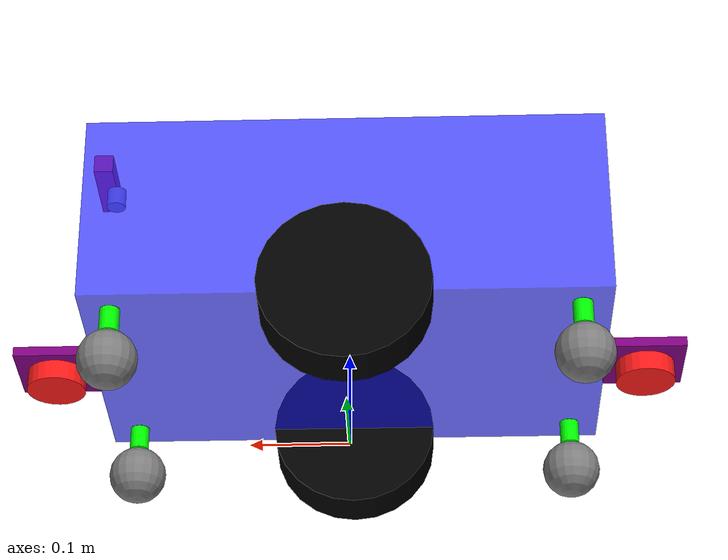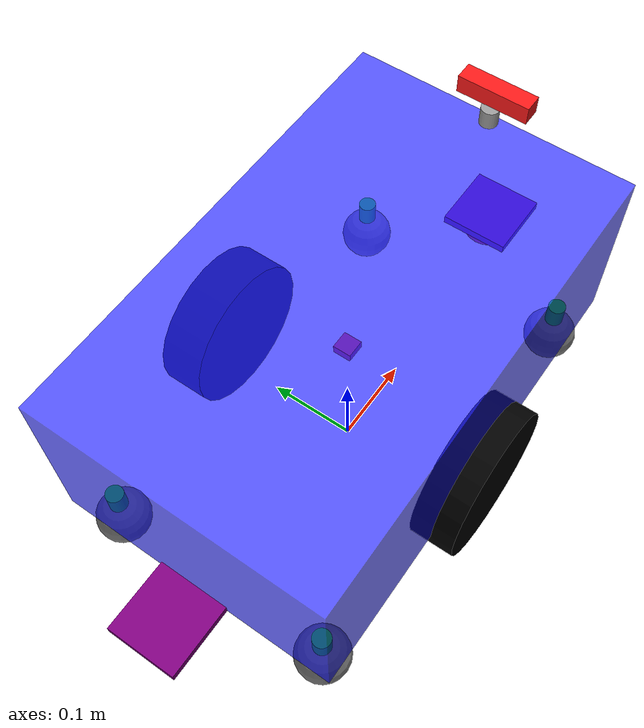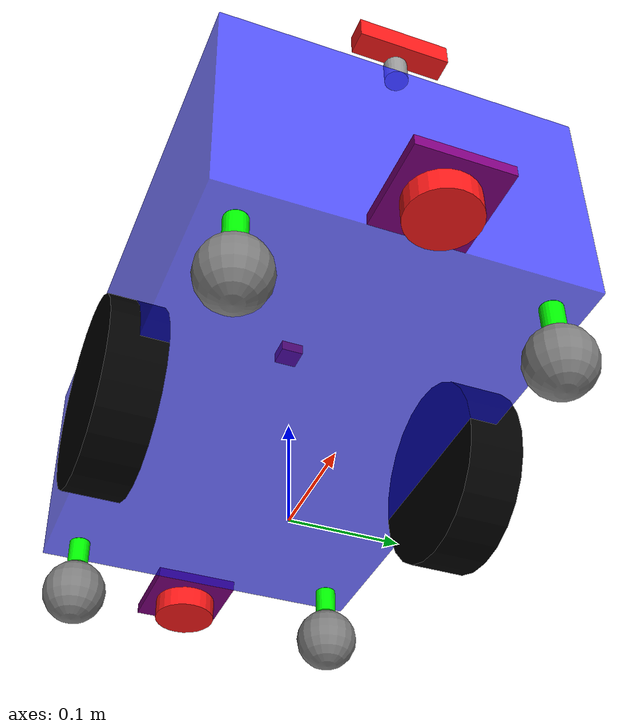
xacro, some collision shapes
<?xml version="1.0"?>
<robot xmlns:xacro="http://www.ros.org/wiki/xacro" name="pec_robot">
    <!-- 索引 -->
     <!-- base_link -->
    <xacro:include filename="$(find sim_pec)/urdf/base/base.xacro" />
    <xacro:include filename="$(find sim_pec)/urdf/base/laser_base.xacro" />
    <!-- wheel  -->
    <xacro:include filename="$(find sim_pec)/urdf/wheel/wheel.xacro" />

    <!-- caster  -->
    <xacro:include filename="$(find sim_pec)/urdf/wheel/caster.xacro" />

    <!-- laser -->
    <xacro:include filename="$(find sim_pec)/urdf/sensor/laser.xacro" />

    <!-- camera -->
    <xacro:include filename="$(find sim_pec)/urdf/sensor/camera.xacro" />

    <!-- imu -->
    <xacro:include filename="$(find sim_pec)/urdf/sensor/imu.xacro" />

    <!-- gazebo control插件 -->
    <xacro:include filename="$(find sim_pec)/urdf/gazebo_setting/gazebo_control_plugin.xacro" />
    <!-- gazebo sensor插件 -->
    <xacro:include filename="$(find sim_pec)/urdf/gazebo_setting/gazebo_sensor_plugin.xacro" />
    <!-- gazebo link设置 -->
    <xacro:include filename="$(find sim_pec)/urdf/gazebo_setting/gazebo_link_setting.xacro" />

    <!-- 应用 -->
    <!-- 基座尺寸 -->
    <xacro:base_xacro length="0.52" width="0.32" height="0.2" />
    <xacro:laser_base_xacro laser_base_name="front" xyz="0.3 0.0 -0.095" />
    <xacro:laser_base_xacro laser_base_name="back" xyz="-0.3 0.0 -0.095" />

    <!-- 轮子 -->
     <!-- 轮间距0.32，轮半径0.085 -->
    <xacro:wheel_xacro wheel_name="left" xyz="0.0 0.16 -0.1" />
    <xacro:wheel_xacro wheel_name="right" xyz="0.0 -0.16 -0.1" />

    <!-- caster x和y轴各收0.3 -->
     <!-- 万向轮要比主动轮高一点点,0.3cm即可 -->
    <xacro:caster_xacro caster_name="LF" xyz="0.23 0.13 -0.1122" />
    <xacro:caster_xacro caster_name="RF" xyz="0.23 -0.13 -0.1122" />
    <xacro:caster_xacro caster_name="LB" xyz="-0.23 0.13 -0.1122" />
    <xacro:caster_xacro caster_name="RB" xyz="-0.23 -0.13 -0.1122" />

    <!-- laser -->
    <xacro:laser_xacro laser_name="front" xyz="0 0 -0.015" rpy="0 0 0" />
    <xacro:laser_xacro laser_name="back" xyz="0 0 -0.015" rpy="0 0 3.1415926" />

    <!-- camera -->
     <!-- 30°对应0.5235987 -->
    <xacro:camera_xacro xyz="0.25 0 0.11" rpy="0 0 0" cylinder_length="0.02"/>

    <!-- imu -->
    <xacro:imu_xacro xyz="0.0 0.0 0.0" />

    <!-- 应用gazebo控制插件 -->
    <xacro:gazebo_control_plugin />
    <!-- 应用gazebo传感器插件 -->
    <xacro:gazebo_sensor_plugin />
    <!-- 应用gazebo link设置 -->
    <xacro:gazebo_link_setting />

</robot>

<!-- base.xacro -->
<robot xmlns:xacro="http://www.ros.org/wiki/xacro">
    <xacro:include filename="$(find sim_pec)/urdf/common_inertia.xacro" />
        <xacro:macro name="base_xacro" params="length width height">
            <!-- 虚拟部件:base_footprint -->
            <link name="base_footprint"/>

            <!-- base_link基座 -->
             <link name="base_link">
                <!-- 外观 -->
                <visual>
                    <origin xyz="0 0 0.0" rpy="0 0 0" />
                    <geometry>
                        <box size="${length} ${width} ${height}" />
                    </geometry>
                    <material name="blue">
                        <color rgba="0.1 0.1 1.0 0.7" />
                    </material>
                </visual>
                <!-- 碰撞 -->
                <!-- collision box高度减小并上移，避免与轮子重叠 -->
                <collision>
                    <origin xyz="0 0 0.05" rpy="0 0 0" />
                    <geometry>
                        <box size="${length} ${width} ${height-0.1}" />
                    </geometry>
                </collision>

                <!-- 惯性与质量 -->
                <xacro:box_inertia m="3.0" w="${length}" h="${width}" d="${height}" />
             </link>

            <!-- 连接base_link与base_footprint -->
            <joint name="base_joint" type="fixed">
                <parent link="base_footprint" />
                <child link="base_link" />
                <origin xyz="0.0 0.0 ${height/2.0+0.085}" rpy="0 0 0" />
            </joint>

        </xacro:macro>
</robot>

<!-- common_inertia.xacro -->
<robot xmlns:xacro="http://ros.org/wiki/xacro">
    <!-- 请注意，w h d分别对应xyz轴的长度 -->
    <xacro:macro name="box_inertia" params="m w h d">
        <inertial>
            <mass value="${m}" />
            <inertia ixx="${(m/12) * (h*h + d*d)}" ixy="0.0" ixz="0.0" iyy="${(m/12) * (w*w + d*d)}" iyz="0.0" izz="${(m/12) * (w*w + h*h)}" />
        </inertial>
    </xacro:macro>

    <xacro:macro name="cylinder_inertia" params="m r h rpy">
        <inertial>
            <origin xyz="0 0 0" rpy="${rpy}"/>
            <mass value="${m}" />
            <inertia ixx="${(m/12) * (3*r*r + h*h)}" ixy="0" ixz="0" iyy="${(m/12) * (3*r*r + h*h)}" iyz="0" izz="${(m/2) * (r*r)}" />
        </inertial>
    </xacro:macro>

    <xacro:macro name="sphere_inertia" params="m r">
        <inertial>
            <mass value="${m}" />
            <inertia ixx="${(2/5) * m * (r*r)}" ixy="0.0" ixz="0.0" iyy="${(2/5) * m * (r*r)}" iyz="0.0" izz="${(2/5) * m * (r*r)}" />
        </inertial>
    </xacro:macro>

</robot>

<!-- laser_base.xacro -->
<robot xmlns:xacro="http://www.ros.org/wiki/xacro">
    <xacro:include filename="$(find sim_pec)/urdf/common_inertia.xacro" />
        <xacro:macro name="laser_base_xacro" params="laser_base_name xyz">
            <link name="${laser_base_name}_laser_base_link">
                <visual>
                    <origin xyz="0.0 0.0 0.0" rpy="0.0 0.0 0.0"/>
                    <geometry>
                        <box size="0.08 0.08 0.01"/>
                    </geometry>
                    <material name="purple">
                        <color rgba="0.5 0.0 0.5 1.0" />
                    </material>
                </visual>
                <collision>
                    <origin xyz="0.0 0.0 0.0" rpy="0.0 0.0 0.0"/>
                    <geometry>
                        <box size="0.08 0.08 0.01"/>
                    </geometry>
                    <material name="purple">
                        <color rgba="0.5 0.0 0.5 1.0" />
                    </material>
                </collision>
                <!-- 惯性与质量 -->
                <xacro:box_inertia m="0.3" w="0.08" h="0.08" d="0.01" />
            </link>

            <!-- 连接base_link与laser_base_link -->
            <joint name="${laser_base_name}_laser_base_joint" type="fixed">
                <parent link="base_link" />
                <child link="${laser_base_name}_laser_base_link" />
                <origin xyz="${xyz}" rpy="0 0 0" />
            </joint>

        </xacro:macro>
</robot>

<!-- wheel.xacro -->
<robot xmlns:xacro="http://www.ros.org/wiki/xacro">
    <xacro:include filename="$(find sim_pec)/urdf/common_inertia.xacro" />
        <xacro:macro name="wheel_xacro" params="wheel_name xyz">
            <link name="${wheel_name}_wheel_link">
                <visual>
                    <!-- 自身绕x轴旋转90度,即对应roll -->
                    <origin xyz="0 0 0" rpy="1.57079 0 0" />
                    <!-- 半径8.5cm，轮宽5cm -->
                    <geometry>
                        <cylinder length="0.05" radius="0.085" />
                    </geometry>
                    <material name="black">
                        <color rgba="0.0 0.0 0.0 0.9"/>
                    </material>
                </visual>
                <collision>
                    <!-- 自身绕x轴旋转90度,即对应roll -->
                    <origin xyz="0 0 0" rpy="1.57079 0 0" />
                    <!-- 半径8.5cm，轮宽5cm -->
                    <geometry>
                        <cylinder length="0.05" radius="0.085" />
                    </geometry>
                    <material name="black">
                        <color rgba="0.0 0.0 0.0 0.9"/>
                    </material>
                </collision>
                <xacro:cylinder_inertia m="2" r="0.085" h="0.05" rpy="1.57079 0 0"/>
            </link>

            <!-- 轮子与base_link连接 -->
            <!-- 绕y轴旋转 -->
            <joint name="${wheel_name}_wheel_joint" type="continuous">
                <parent link="base_link" />
                <child link="${wheel_name}_wheel_link" />
                <origin xyz="${xyz}" />
                <axis xyz="0 1 0" />
                <limit effort="10" velocity="100"/>
            </joint>

        </xacro:macro>
</robot>

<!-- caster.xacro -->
<robot xmlns:xacro="http://www.ros.org/wiki/xacro">
    <xacro:include filename="$(find sim_pec)/urdf/common_inertia.xacro" />
        <xacro:macro name="caster_xacro" params="caster_name xyz">
            <!-- 万向轮部件 -->
            <link name="${caster_name}_caster_link">
                <visual>
                    <origin xyz="0 0 0" rpy="0 0 0" />
                    <geometry>
                        <sphere radius="0.03" />
                    </geometry>
                    <material name="gray">
                        <color rgba="0.5 0.5 0.5 0.9"/>
                    </material>
                </visual>
                <collision>
                    <origin xyz="0 0 0" rpy="0 0 0" />
                    <geometry>
                        <sphere radius="0.03" />
                    </geometry>
                    <material name="gray">
                        <color rgba="0.5 0.5 0.5 0.9"/>
                    </material>
                </collision>
                <xacro:sphere_inertia m="0.01" r="0.03" />
            </link>

            <!-- 连接杆部件 -->
            <link name="${caster_name}_connect_link">
                <visual>
                    <origin xyz="0 0 0" rpy="0 0 0" />
                    <geometry>
                        <cylinder length="0.025" radius="0.01" />
                    </geometry>
                    <material name="green">
                        <color rgba="0.0 1.0 0.0 0.9"/>
                    </material>
                </visual>
                <xacro:cylinder_inertia m="0.01" r="0.01" h="0.025" rpy="0 0 0" />
            </link>

            <!-- 连接 连接件和万向轮 -->
            <joint name="${caster_name}_caster_joint" type="fixed">
                <parent link="${caster_name}_connect_link" />
                <child link="${caster_name}_caster_link" />
                <origin xyz="0 0 -0.0425" />
                <axis xyz="0 0 0" />
            </joint>

            <!-- 连接 连接件和base_link -->
            <joint name="${caster_name}_connect_joint" type="fixed">
                <parent link="base_link" />
                <child link="${caster_name}_connect_link" />
                <origin xyz="${xyz}" />
                <axis xyz="0 0 0" />
            </joint>

        </xacro:macro>
</robot>

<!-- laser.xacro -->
<robot xmlns:xacro="http://www.ros.org/wiki/xacro">
    <xacro:include filename="$(find sim_pec)/urdf/common_inertia.xacro" />
        <xacro:macro name="laser_xacro" params="laser_name xyz rpy">

        <!-- 雷达部件 -->
         <link name="${laser_name}_laser_link">
            <visual>
                <origin xyz="0 0 0" rpy="0 0 0" />
                <geometry>
                    <cylinder length="0.02" radius="0.03" />
                </geometry>
                <material name="red">
                    <color rgba="1.0 0.1 0.1 1.0"/>
                </material>
            </visual>
            <collision>
                <origin xyz="0 0 0" rpy="0 0 0" />
                <geometry>
                    <cylinder length="0.02" radius="0.03" />
                </geometry>
                <material name="red">
                    <color rgba="1.0 0.1 0.1 1.0"/>
                </material>
            </collision>
            <xacro:cylinder_inertia m="0.3" r="0.03" h="0.02" rpy="0 0 0"/>
         </link>

        <!-- laser_base_link与laser_link连接 -->
        <joint name="${laser_name}_laser_joint" type="fixed">
                <parent link="${laser_name}_laser_base_link" />
                <child link="${laser_name}_laser_link" />
                <origin xyz="${xyz}" rpy="${rpy}" />
        </joint>

    </xacro:macro>
</robot>

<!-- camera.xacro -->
<robot xmlns:xacro="http://www.ros.org/wiki/xacro">
    <xacro:include filename="$(find sim_pec)/urdf/common_inertia.xacro" />
        <xacro:macro name="camera_xacro" params="xyz rpy cylinder_length">

            <!-- 双目相机部件 -->
            <link name="camera_link">
                <visual>
                    <origin xyz="0.0 0 0.0" rpy="0 0 0" />
                    <geometry>
                        <mesh filename="file:///home/netlab/littletank/model/d435/d435.dae" scale="1.0 1.0 1.0"/>
                    </geometry>
                    <material name="red">
                        <color rgba="1.0 0.1 0.1 1.0"/>
                    </material>
                </visual>
                <collision>
                    <origin xyz="0.0 0 0.0" rpy="0 0 0" />
                    <geometry>
                        <!-- 双目尺寸，暂定这么大 -->
                        <box size="0.02 0.08 0.02" />
                    </geometry>
                    <material name="red">
                        <color rgba="1.0 0.1 0.1 1.0"/>
                    </material>
                </collision>
                <xacro:box_inertia m="0.2" w="0.02" h="0.08" d="0.02" />
            </link>

            <!-- 相机支撑杆 -->
            <link name="camera_cylinder_link">
                <visual>
                    <origin xyz="0.0 0.0 0.0" rpy="0.0 0.0 0.0"/>
                    <geometry>
                        <cylinder radius="0.01" length="${cylinder_length}"/>
                    </geometry>
                    <material name="gray">
                        <color rgba="0.6 0.6 0.6 1.0"/>
                    </material>
                </visual>

                <collision>
                    <origin xyz="0.0 0.0 0.0" rpy="0.0 0.0 0.0"/>
                    <geometry>
                        <cylinder radius="0.01" length="${cylinder_length}"/>
                    </geometry>
                    <material name="gray">
                        <color rgba="0.6 0.6 0.6 1.0"/>
                    </material>
                </collision>
                <xacro:cylinder_inertia m="0.2" r="0.01" h="${cylinder_length}"  rpy="0 0 0" />
            </link>

            <!-- 连接cylinder与base_link -->
            <joint name="cylinder_base_link_joint" type="fixed">
                <parent link="base_link" />
                <child link="camera_cylinder_link" />
                <origin xyz="${xyz}" rpy="0.0 0.0 0" />
            </joint>

            <!-- 连接camera和cylinder -->
            <!-- 这里camera如果有倾斜角度，最后一个数就大一点，没有倾斜就为0 -->
            <joint name="cylinder_camera_joint" type="fixed">
                    <parent link="camera_cylinder_link" />
                    <child link="camera_link" />
                    <origin xyz="0.01 0 ${cylinder_length/2.0+0.01}" rpy="${rpy}" />
            </joint>

        </xacro:macro>
</robot>

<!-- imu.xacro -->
<robot xmlns:xacro="http://www.ros.org/wiki/xacro">
    <xacro:include filename="$(find sim_pec)/urdf/common_inertia.xacro" />
        <xacro:macro name="imu_xacro" params="xyz">
            <link name="imu_link">
                <visual>
                    <origin xyz="0.0 0.0 0.0" rpy="0.0 0.0 0.0"/>
                    <geometry>
                        <box size="0.02 0.02 0.01"/>
                    </geometry>
                    <material name="red">
                        <color rgba="1.0 0.1 0.1 1.0"/>
                    </material>
                </visual>
                <collision>
                    <origin xyz="0.0 0.0 0.0" rpy="0.0 0.0 0.0"/>
                    <geometry>
                        <box size="0.02 0.02 0.01"/>
                    </geometry>
                </collision>

                <xacro:box_inertia m="0.02" w="0.02" h="0.02"  d="0.01" />
            </link>

            <!-- imu与base_link连接 -->
            <joint name="imu_joint" type="fixed">
                <parent link="base_link" />
                <child link="imu_link" />
                <origin xyz="${xyz}" rpy="0 0 0"/>
            </joint>

        </xacro:macro>
</robot>
